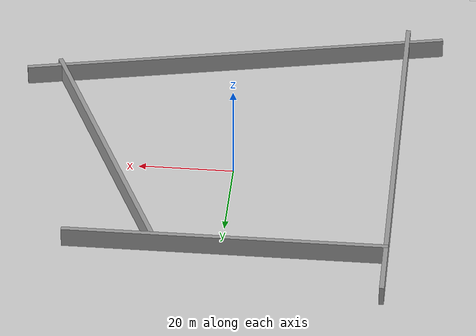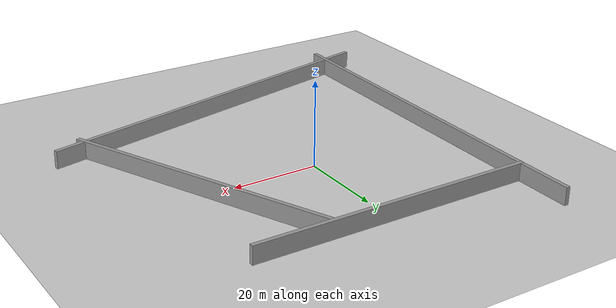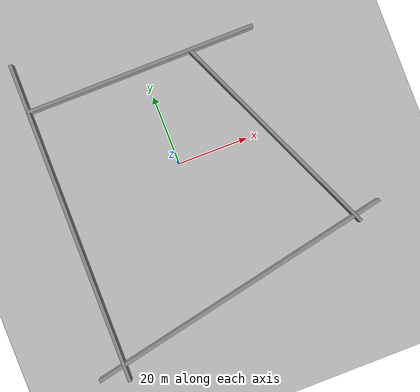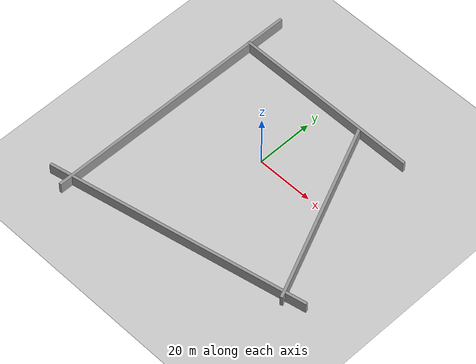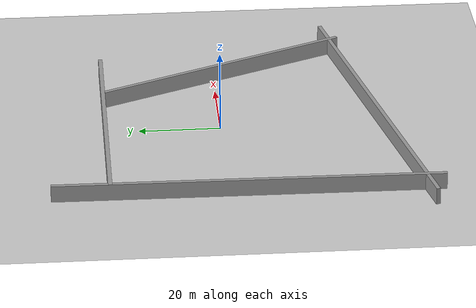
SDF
<sdf version="1.7">
 <world name="default">
  <light name="sun" type="directional">
   <pose>0 0 10 0 -0 0</pose>
   <diffuse>0.8 0.8 0.8 1</diffuse>
   <specular>0.2 0.2 0.2 1</specular>
   <attenuation>
    <range>1000</range>
    <constant>0.9</constant>
    <linear>0.01</linear>
    <quadratic>0.001</quadratic>
   </attenuation>
   <direction>-0.5 0.1 -0.9</direction>
   <spot><inner_angle>0</inner_angle><outer_angle>0</outer_angle><falloff>0</falloff></spot>
  </light>
  <model name="ground_plane">
   <static>1</static>
   <link name="link">
    <collision name="collision">
     <geometry><plane><normal>0 0 1</normal><size>100 100</size></plane></geometry>
     <surface><friction><ode><mu>100</mu><mu2>50</mu2></ode></friction></surface>
    </collision>
    <visual name="visual">
     <cast_shadows>0</cast_shadows>
     <geometry><plane><normal>0 0 1</normal><size>100 100</size></plane></geometry>
     <material>
      <script><uri>file://media/materials/scripts/gazebo.material</uri><name>Gazebo/Grey</name></script>
     </material>
    </visual>
   </link>
  </model>
  <gravity>0 0 -9.8</gravity>
  <magnetic_field>6e-06 2.3e-05 -4.2e-05</magnetic_field>
  <atmosphere type="adiabatic"/>
  <physics type="ode">
   <max_step_size>0.001</max_step_size>
   <real_time_factor>1</real_time_factor>
   <real_time_update_rate>1000</real_time_update_rate>
  </physics>
  <scene><ambient>0.4 0.4 0.4 1</ambient><background>0.7 0.7 0.7 1</background><shadows>1</shadows></scene>
  <audio><device>default</device></audio>
  <spherical_coordinates>
   <surface_model>EARTH_WGS84</surface_model>
   <latitude_deg>0</latitude_deg>
   <longitude_deg>0</longitude_deg>
   <elevation>0</elevation>
   <heading_deg>0</heading_deg>
  </spherical_coordinates>
  <model name="unit_box">
   <pose>2.8914 -38.5808 0.500165 -1e-05 2e-06 0.206573</pose>
   <link name="link">
    <inertial>
     <mass>1</mass>
     <inertia>
      <ixx>0.166667</ixx>
      <ixy>0</ixy>
      <ixz>0</ixz>
      <iyy>0.166667</iyy>
      <iyz>0</iyz>
      <izz>0.166667</izz>
     </inertia>
    </inertial>
    <collision name="collision"><geometry><box><size>91.8243 1 6.97561</size></box></geometry></collision>
    <visual name="visual">
     <geometry><box><size>91.8243 1 6.97561</size></box></geometry>
     <material>
      <script><name>Gazebo/Grey</name><uri>file://media/materials/scripts/gazebo.material</uri></script>
     </material>
    </visual>
    <kinematic>1</kinematic>
   </link>
  </model>
  <model name="unit_box_clone">
   <pose>-0.734389 28.195 0.49984 -1e-05 0 0</pose>
   <link name="link">
    <inertial>
     <mass>1</mass>
     <inertia>
      <ixx>0.166667</ixx>
      <ixy>0</ixy>
      <ixz>0</ixz>
      <iyy>0.166667</iyy>
      <iyz>0</iyz>
      <izz>0.166667</izz>
     </inertia>
    </inertial>
    <collision name="collision"><geometry><box><size>66.7279 1 6.97561</size></box></geometry></collision>
    <visual name="visual">
     <geometry><box><size>66.7279 1 6.97561</size></box></geometry>
     <material>
      <script><name>Gazebo/Grey</name><uri>file://media/materials/scripts/gazebo.material</uri></script>
     </material>
    </visual>
    <kinematic>1</kinematic>
   </link>
  </model>
  <model name="unit_box_clone_clone">
   <pose>-33.9243 -4.52026 0.499994 0 -1e-05 -1.57896</pose>
   <link name="link">
    <inertial>
     <mass>1</mass>
     <inertia>
      <ixx>0.166667</ixx>
      <ixy>0</ixy>
      <ixz>0</ixz>
      <iyy>0.166667</iyy>
      <iyz>0</iyz>
      <izz>0.166667</izz>
     </inertia>
    </inertial>
    <collision name="collision"><geometry><box><size>93.1915 1 6.97561</size></box></geometry></collision>
    <visual name="visual">
     <geometry><box><size>93.1915 1 6.97561</size></box></geometry>
     <material>
      <script><name>Gazebo/Grey</name><uri>file://media/materials/scripts/gazebo.material</uri></script>
     </material>
    </visual>
    <kinematic>1</kinematic>
   </link>
  </model>
  <model name="unit_box_clone_clone_clone">
   <pose>27.5773 -2.37001 0.499961 -4e-06 -9e-06 -1.15369</pose>
   <link name="link">
    <inertial>
     <mass>1</mass>
     <inertia>
      <ixx>0.166667</ixx>
      <ixy>0</ixy>
      <ixz>0</ixz>
      <iyy>0.166667</iyy>
      <iyz>0</iyz>
      <izz>0.166667</izz>
     </inertia>
    </inertial>
    <collision name="collision"><geometry><box><size>66.7279 1 6.97561</size></box></geometry></collision>
    <visual name="visual">
     <geometry><box><size>66.7279 1 6.97561</size></box></geometry>
     <material>
      <script><name>Gazebo/Grey</name><uri>file://media/materials/scripts/gazebo.material</uri></script>
     </material>
    </visual>
    <kinematic>1</kinematic>
   </link>
  </model>
 </world>
</sdf>
